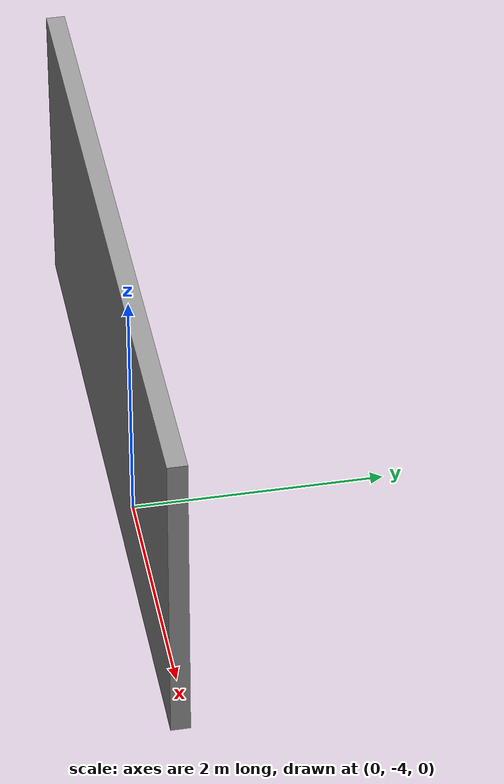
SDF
<?xml version='1.0'?>
<sdf version='1.7'>
  <model name='Untitled'>
    <pose>-0.35 -2.0675 0 0 -0 0</pose>
    <link name='Wall_0'>
      <collision name='Wall_0_Collision'>
        <geometry>
          <box>
            <size>5.75 0.15 2.5</size>
          </box>
        </geometry>
        <pose>0 0 1.25 0 -0 0</pose>
      </collision>
      <visual name='Wall_0_Visual'>
        <pose>0 0 1.25 0 -0 0</pose>
        <geometry>
          <box>
            <size>5.75 0.15 2.5</size>
          </box>
        </geometry>
        <material>
          <script>
            <uri>file://media/materials/scripts/gazebo.material</uri>
            <name>Gazebo/Grey</name>
          </script>
          <ambient>1 1 1 1</ambient>
        </material>
        <meta>
          <layer>0</layer>
        </meta>
      </visual>
      <pose>-0 -1.9925 0 0 -0 3.14159</pose>
    </link>
    <static>1</static>
  </model>
</sdf>
